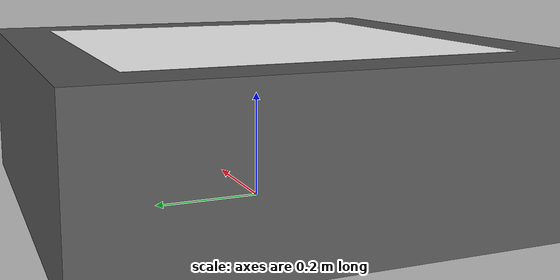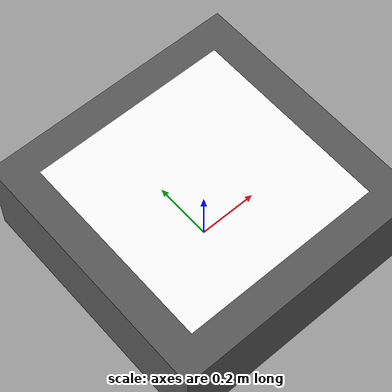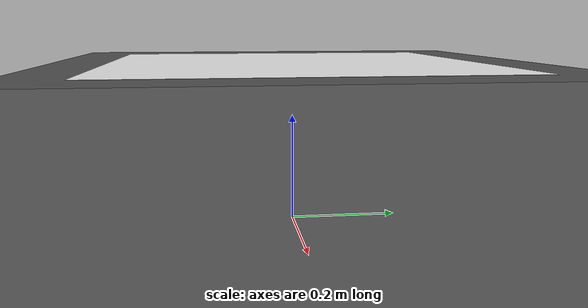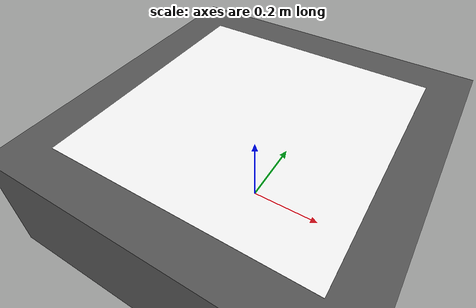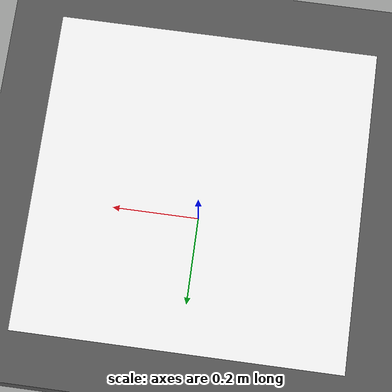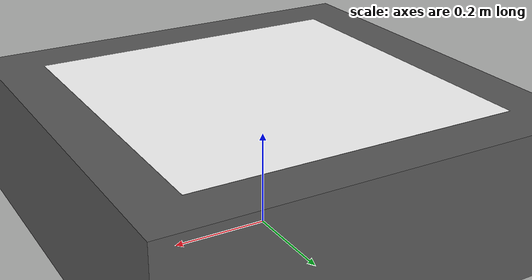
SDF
<?xml version='1.0' encoding='utf-8'?>
<sdf version="1.9">
  <model name="drone_pad">
    <static>true</static>
    <link name="platform">
      <collision name="platform_collision">
        <pose>0 0 0.15 0 0 0</pose>
        <geometry>
          <box>
            <size>2.5 2.5 0.3</size>
          </box>
        </geometry>
      </collision>
      <visual name="platform_body">
        <pose>0 0 0.15 0 0 0</pose>
        <geometry>
          <box>
            <size>2.5 2.5 0.3</size>
          </box>
        </geometry>
        <material>
          <ambient>0.35 0.35 0.35 1</ambient>
          <diffuse>0.35 0.35 0.35 1</diffuse>
          <specular>0 0 0 1</specular>
        </material>
      </visual>
      <visual name="marker_quiet_zone">
        <pose>0 0 0.3001 0 0 0</pose>
        <geometry>
          <plane>
            <normal>0 0 1</normal>
            <size>0.666666666667 0.666666666667</size>
          </plane>
        </geometry>
        <cast_shadows>false</cast_shadows>
        <material>
          <ambient>1 1 1 1</ambient>
          <diffuse>1 1 1 1</diffuse>
          <specular>0 0 0 1</specular>
        </material>
      </visual>
      <visual name="marker_r0_c0">
        <pose>-0.20833333333333331 0.20833333333333331 0.3002 0 0 0</pose>
        <geometry>
          <plane>
            <normal>0 0 1</normal>
            <size>0.0833333333333 0.0833333333333</size>
          </plane>
        </geometry>
        <cast_shadows>false</cast_shadows>
        <material>
          <ambient>0 0 0 1</ambient>
          <diffuse>0 0 0 1</diffuse>
          <specular>0 0 0 1</specular>
        </material>
      </visual>
      <visual name="marker_r0_c1">
        <pose>-0.125 0.20833333333333331 0.3002 0 0 0</pose>
        <geometry>
          <plane>
            <normal>0 0 1</normal>
            <size>0.0833333333333 0.0833333333333</size>
          </plane>
        </geometry>
        <cast_shadows>false</cast_shadows>
        <material>
          <ambient>0 0 0 1</ambient>
          <diffuse>0 0 0 1</diffuse>
          <specular>0 0 0 1</specular>
        </material>
      </visual>
      <visual name="marker_r0_c2">
        <pose>-0.041666666666666664 0.20833333333333331 0.3002 0 0 0</pose>
        <geometry>
          <plane>
            <normal>0 0 1</normal>
            <size>0.0833333333333 0.0833333333333</size>
          </plane>
        </geometry>
        <cast_shadows>false</cast_shadows>
        <material>
          <ambient>0 0 0 1</ambient>
          <diffuse>0 0 0 1</diffuse>
          <specular>0 0 0 1</specular>
        </material>
      </visual>
      <visual name="marker_r0_c3">
        <pose>0.041666666666666664 0.20833333333333331 0.3002 0 0 0</pose>
        <geometry>
          <plane>
            <normal>0 0 1</normal>
            <size>0.0833333333333 0.0833333333333</size>
          </plane>
        </geometry>
        <cast_shadows>false</cast_shadows>
        <material>
          <ambient>0 0 0 1</ambient>
          <diffuse>0 0 0 1</diffuse>
          <specular>0 0 0 1</specular>
        </material>
      </visual>
      <visual name="marker_r0_c4">
        <pose>0.125 0.20833333333333331 0.3002 0 0 0</pose>
        <geometry>
          <plane>
            <normal>0 0 1</normal>
            <size>0.0833333333333 0.0833333333333</size>
          </plane>
        </geometry>
        <cast_shadows>false</cast_shadows>
        <material>
          <ambient>0 0 0 1</ambient>
          <diffuse>0 0 0 1</diffuse>
          <specular>0 0 0 1</specular>
        </material>
      </visual>
      <visual name="marker_r0_c5">
        <pose>0.20833333333333331 0.20833333333333331 0.3002 0 0 0</pose>
        <geometry>
          <plane>
            <normal>0 0 1</normal>
            <size>0.0833333333333 0.0833333333333</size>
          </plane>
        </geometry>
        <cast_shadows>false</cast_shadows>
        <material>
          <ambient>0 0 0 1</ambient>
          <diffuse>0 0 0 1</diffuse>
          <specular>0 0 0 1</specular>
        </material>
      </visual>
      <visual name="marker_r1_c0">
        <pose>-0.20833333333333331 0.125 0.3002 0 0 0</pose>
        <geometry>
          <plane>
            <normal>0 0 1</normal>
            <size>0.0833333333333 0.0833333333333</size>
          </plane>
        </geometry>
        <cast_shadows>false</cast_shadows>
        <material>
          <ambient>0 0 0 1</ambient>
          <diffuse>0 0 0 1</diffuse>
          <specular>0 0 0 1</specular>
        </material>
      </visual>
      <visual name="marker_r1_c2">
        <pose>-0.041666666666666664 0.125 0.3002 0 0 0</pose>
        <geometry>
          <plane>
            <normal>0 0 1</normal>
            <size>0.0833333333333 0.0833333333333</size>
          </plane>
        </geometry>
        <cast_shadows>false</cast_shadows>
        <material>
          <ambient>0 0 0 1</ambient>
          <diffuse>0 0 0 1</diffuse>
          <specular>0 0 0 1</specular>
        </material>
      </visual>
      <visual name="marker_r1_c5">
        <pose>0.20833333333333331 0.125 0.3002 0 0 0</pose>
        <geometry>
          <plane>
            <normal>0 0 1</normal>
            <size>0.0833333333333 0.0833333333333</size>
          </plane>
        </geometry>
        <cast_shadows>false</cast_shadows>
        <material>
          <ambient>0 0 0 1</ambient>
          <diffuse>0 0 0 1</diffuse>
          <specular>0 0 0 1</specular>
        </material>
      </visual>
      <visual name="marker_r2_c0">
        <pose>-0.20833333333333331 0.041666666666666664 0.3002 0 0 0</pose>
        <geometry>
          <plane>
            <normal>0 0 1</normal>
            <size>0.0833333333333 0.0833333333333</size>
          </plane>
        </geometry>
        <cast_shadows>false</cast_shadows>
        <material>
          <ambient>0 0 0 1</ambient>
          <diffuse>0 0 0 1</diffuse>
          <specular>0 0 0 1</specular>
        </material>
      </visual>
      <visual name="marker_r2_c1">
        <pose>-0.125 0.041666666666666664 0.3002 0 0 0</pose>
        <geometry>
          <plane>
            <normal>0 0 1</normal>
            <size>0.0833333333333 0.0833333333333</size>
          </plane>
        </geometry>
        <cast_shadows>false</cast_shadows>
        <material>
          <ambient>0 0 0 1</ambient>
          <diffuse>0 0 0 1</diffuse>
          <specular>0 0 0 1</specular>
        </material>
      </visual>
      <visual name="marker_r2_c3">
        <pose>0.041666666666666664 0.041666666666666664 0.3002 0 0 0</pose>
        <geometry>
          <plane>
            <normal>0 0 1</normal>
            <size>0.0833333333333 0.0833333333333</size>
          </plane>
        </geometry>
        <cast_shadows>false</cast_shadows>
        <material>
          <ambient>0 0 0 1</ambient>
          <diffuse>0 0 0 1</diffuse>
          <specular>0 0 0 1</specular>
        </material>
      </visual>
      <visual name="marker_r2_c5">
        <pose>0.20833333333333331 0.041666666666666664 0.3002 0 0 0</pose>
        <geometry>
          <plane>
            <normal>0 0 1</normal>
            <size>0.0833333333333 0.0833333333333</size>
          </plane>
        </geometry>
        <cast_shadows>false</cast_shadows>
        <material>
          <ambient>0 0 0 1</ambient>
          <diffuse>0 0 0 1</diffuse>
          <specular>0 0 0 1</specular>
        </material>
      </visual>
      <visual name="marker_r3_c0">
        <pose>-0.20833333333333331 -0.041666666666666664 0.3002 0 0 0</pose>
        <geometry>
          <plane>
            <normal>0 0 1</normal>
            <size>0.0833333333333 0.0833333333333</size>
          </plane>
        </geometry>
        <cast_shadows>false</cast_shadows>
        <material>
          <ambient>0 0 0 1</ambient>
          <diffuse>0 0 0 1</diffuse>
          <specular>0 0 0 1</specular>
        </material>
      </visual>
      <visual name="marker_r3_c1">
        <pose>-0.125 -0.041666666666666664 0.3002 0 0 0</pose>
        <geometry>
          <plane>
            <normal>0 0 1</normal>
            <size>0.0833333333333 0.0833333333333</size>
          </plane>
        </geometry>
        <cast_shadows>false</cast_shadows>
        <material>
          <ambient>0 0 0 1</ambient>
          <diffuse>0 0 0 1</diffuse>
          <specular>0 0 0 1</specular>
        </material>
      </visual>
      <visual name="marker_r3_c2">
        <pose>-0.041666666666666664 -0.041666666666666664 0.3002 0 0 0</pose>
        <geometry>
          <plane>
            <normal>0 0 1</normal>
            <size>0.0833333333333 0.0833333333333</size>
          </plane>
        </geometry>
        <cast_shadows>false</cast_shadows>
        <material>
          <ambient>0 0 0 1</ambient>
          <diffuse>0 0 0 1</diffuse>
          <specular>0 0 0 1</specular>
        </material>
      </visual>
      <visual name="marker_r3_c5">
        <pose>0.20833333333333331 -0.041666666666666664 0.3002 0 0 0</pose>
        <geometry>
          <plane>
            <normal>0 0 1</normal>
            <size>0.0833333333333 0.0833333333333</size>
          </plane>
        </geometry>
        <cast_shadows>false</cast_shadows>
        <material>
          <ambient>0 0 0 1</ambient>
          <diffuse>0 0 0 1</diffuse>
          <specular>0 0 0 1</specular>
        </material>
      </visual>
      <visual name="marker_r4_c0">
        <pose>-0.20833333333333331 -0.125 0.3002 0 0 0</pose>
        <geometry>
          <plane>
            <normal>0 0 1</normal>
            <size>0.0833333333333 0.0833333333333</size>
          </plane>
        </geometry>
        <cast_shadows>false</cast_shadows>
        <material>
          <ambient>0 0 0 1</ambient>
          <diffuse>0 0 0 1</diffuse>
          <specular>0 0 0 1</specular>
        </material>
      </visual>
      <visual name="marker_r4_c1">
        <pose>-0.125 -0.125 0.3002 0 0 0</pose>
        <geometry>
          <plane>
            <normal>0 0 1</normal>
            <size>0.0833333333333 0.0833333333333</size>
          </plane>
        </geometry>
        <cast_shadows>false</cast_shadows>
        <material>
          <ambient>0 0 0 1</ambient>
          <diffuse>0 0 0 1</diffuse>
          <specular>0 0 0 1</specular>
        </material>
      </visual>
      <visual name="marker_r4_c2">
        <pose>-0.041666666666666664 -0.125 0.3002 0 0 0</pose>
        <geometry>
          <plane>
            <normal>0 0 1</normal>
            <size>0.0833333333333 0.0833333333333</size>
          </plane>
        </geometry>
        <cast_shadows>false</cast_shadows>
        <material>
          <ambient>0 0 0 1</ambient>
          <diffuse>0 0 0 1</diffuse>
          <specular>0 0 0 1</specular>
        </material>
      </visual>
      <visual name="marker_r4_c4">
        <pose>0.125 -0.125 0.3002 0 0 0</pose>
        <geometry>
          <plane>
            <normal>0 0 1</normal>
            <size>0.0833333333333 0.0833333333333</size>
          </plane>
        </geometry>
        <cast_shadows>false</cast_shadows>
        <material>
          <ambient>0 0 0 1</ambient>
          <diffuse>0 0 0 1</diffuse>
          <specular>0 0 0 1</specular>
        </material>
      </visual>
      <visual name="marker_r4_c5">
        <pose>0.20833333333333331 -0.125 0.3002 0 0 0</pose>
        <geometry>
          <plane>
            <normal>0 0 1</normal>
            <size>0.0833333333333 0.0833333333333</size>
          </plane>
        </geometry>
        <cast_shadows>false</cast_shadows>
        <material>
          <ambient>0 0 0 1</ambient>
          <diffuse>0 0 0 1</diffuse>
          <specular>0 0 0 1</specular>
        </material>
      </visual>
      <visual name="marker_r5_c0">
        <pose>-0.20833333333333331 -0.20833333333333331 0.3002 0 0 0</pose>
        <geometry>
          <plane>
            <normal>0 0 1</normal>
            <size>0.0833333333333 0.0833333333333</size>
          </plane>
        </geometry>
        <cast_shadows>false</cast_shadows>
        <material>
          <ambient>0 0 0 1</ambient>
          <diffuse>0 0 0 1</diffuse>
          <specular>0 0 0 1</specular>
        </material>
      </visual>
      <visual name="marker_r5_c1">
        <pose>-0.125 -0.20833333333333331 0.3002 0 0 0</pose>
        <geometry>
          <plane>
            <normal>0 0 1</normal>
            <size>0.0833333333333 0.0833333333333</size>
          </plane>
        </geometry>
        <cast_shadows>false</cast_shadows>
        <material>
          <ambient>0 0 0 1</ambient>
          <diffuse>0 0 0 1</diffuse>
          <specular>0 0 0 1</specular>
        </material>
      </visual>
      <visual name="marker_r5_c2">
        <pose>-0.041666666666666664 -0.20833333333333331 0.3002 0 0 0</pose>
        <geometry>
          <plane>
            <normal>0 0 1</normal>
            <size>0.0833333333333 0.0833333333333</size>
          </plane>
        </geometry>
        <cast_shadows>false</cast_shadows>
        <material>
          <ambient>0 0 0 1</ambient>
          <diffuse>0 0 0 1</diffuse>
          <specular>0 0 0 1</specular>
        </material>
      </visual>
      <visual name="marker_r5_c3">
        <pose>0.041666666666666664 -0.20833333333333331 0.3002 0 0 0</pose>
        <geometry>
          <plane>
            <normal>0 0 1</normal>
            <size>0.0833333333333 0.0833333333333</size>
          </plane>
        </geometry>
        <cast_shadows>false</cast_shadows>
        <material>
          <ambient>0 0 0 1</ambient>
          <diffuse>0 0 0 1</diffuse>
          <specular>0 0 0 1</specular>
        </material>
      </visual>
      <visual name="marker_r5_c4">
        <pose>0.125 -0.20833333333333331 0.3002 0 0 0</pose>
        <geometry>
          <plane>
            <normal>0 0 1</normal>
            <size>0.0833333333333 0.0833333333333</size>
          </plane>
        </geometry>
        <cast_shadows>false</cast_shadows>
        <material>
          <ambient>0 0 0 1</ambient>
          <diffuse>0 0 0 1</diffuse>
          <specular>0 0 0 1</specular>
        </material>
      </visual>
      <visual name="marker_r5_c5">
        <pose>0.20833333333333331 -0.20833333333333331 0.3002 0 0 0</pose>
        <geometry>
          <plane>
            <normal>0 0 1</normal>
            <size>0.0833333333333 0.0833333333333</size>
          </plane>
        </geometry>
        <cast_shadows>false</cast_shadows>
        <material>
          <ambient>0 0 0 1</ambient>
          <diffuse>0 0 0 1</diffuse>
          <specular>0 0 0 1</specular>
        </material>
      </visual>
    </link>
  </model>
</sdf>
